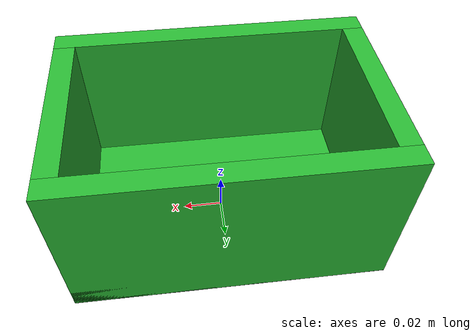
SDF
<?xml version="1.0" ?>
<sdf version="1.7">
  <model name="rear_drop_bin">
    <static>true</static>
    <link name="bin_link">
      <collision name="bottom_collision">
        <geometry>
          <box>
            <size>0.15 0.10 0.01</size>
          </box>
        </geometry>
        <pose>0 0 0.005 0 0 0</pose>
      </collision>
      <collision name="left_wall_collision">
        <geometry>
          <box>
            <size>0.15 0.01 0.08</size>
          </box>
        </geometry>
        <pose>0 0.045 0.04 0 0 0</pose>
      </collision>
      <collision name="right_wall_collision">
        <geometry>
          <box>
            <size>0.15 0.01 0.08</size>
          </box>
        </geometry>
        <pose>0 -0.045 0.04 0 0 0</pose>
      </collision>
      <collision name="front_wall_collision">
        <geometry>
          <box>
            <size>0.01 0.08 0.08</size>
          </box>
        </geometry>
        <pose>0.07 0 0.04 0 0 0</pose>
      </collision>
      <collision name="rear_wall_collision">
        <geometry>
          <box>
            <size>0.01 0.08 0.08</size>
          </box>
        </geometry>
        <pose>-0.07 0 0.04 0 0 0</pose>
      </collision>
      <visual name="bottom_visual">
        <geometry>
          <box>
            <size>0.15 0.10 0.01</size>
          </box>
        </geometry>
        <pose>0 0 0.005 0 0 0</pose>
        <material>
          <ambient>0.10 0.52 0.14 1.0</ambient>
          <diffuse>0.16 0.72 0.20 1.0</diffuse>
        </material>
      </visual>
      <visual name="left_wall_visual">
        <geometry>
          <box>
            <size>0.15 0.01 0.08</size>
          </box>
        </geometry>
        <pose>0 0.045 0.04 0 0 0</pose>
        <material>
          <ambient>0.10 0.52 0.14 0.9</ambient>
          <diffuse>0.16 0.72 0.20 0.9</diffuse>
        </material>
      </visual>
      <visual name="right_wall_visual">
        <geometry>
          <box>
            <size>0.15 0.01 0.08</size>
          </box>
        </geometry>
        <pose>0 -0.045 0.04 0 0 0</pose>
        <material>
          <ambient>0.10 0.52 0.14 0.9</ambient>
          <diffuse>0.16 0.72 0.20 0.9</diffuse>
        </material>
      </visual>
      <visual name="front_wall_visual">
        <geometry>
          <box>
            <size>0.01 0.08 0.08</size>
          </box>
        </geometry>
        <pose>0.07 0 0.04 0 0 0</pose>
        <material>
          <ambient>0.10 0.52 0.14 0.9</ambient>
          <diffuse>0.16 0.72 0.20 0.9</diffuse>
        </material>
      </visual>
      <visual name="rear_wall_visual">
        <geometry>
          <box>
            <size>0.01 0.08 0.08</size>
          </box>
        </geometry>
        <pose>-0.07 0 0.04 0 0 0</pose>
        <material>
          <ambient>0.10 0.52 0.14 0.9</ambient>
          <diffuse>0.16 0.72 0.20 0.9</diffuse>
        </material>
      </visual>
    </link>
  </model>
</sdf>
